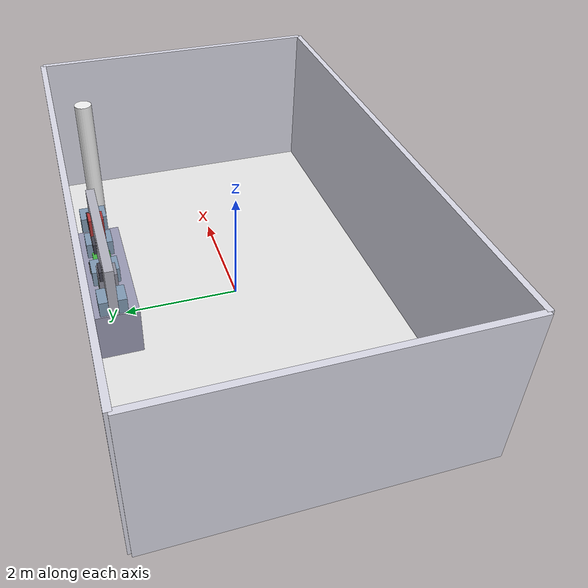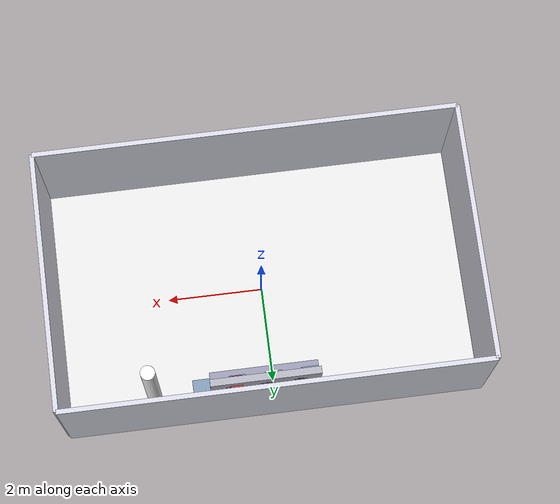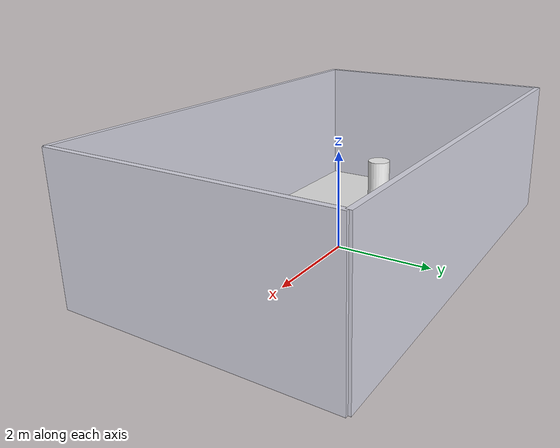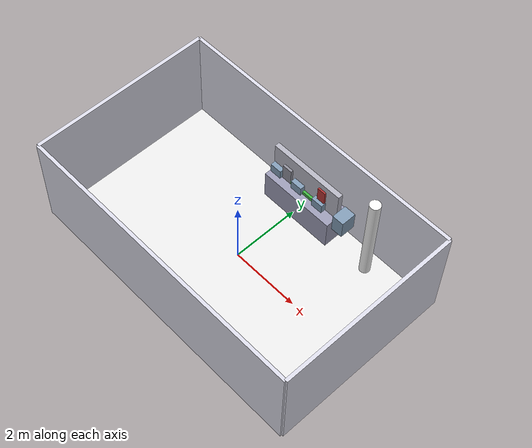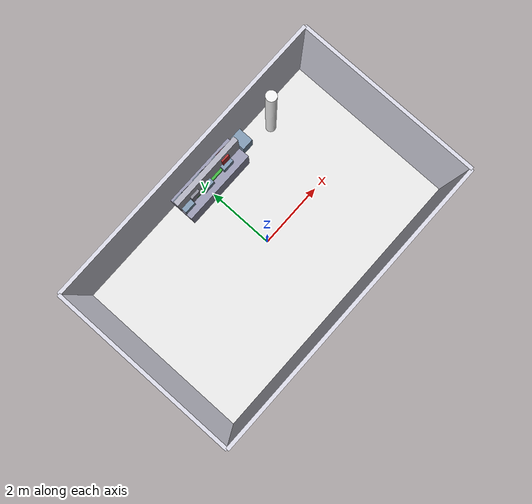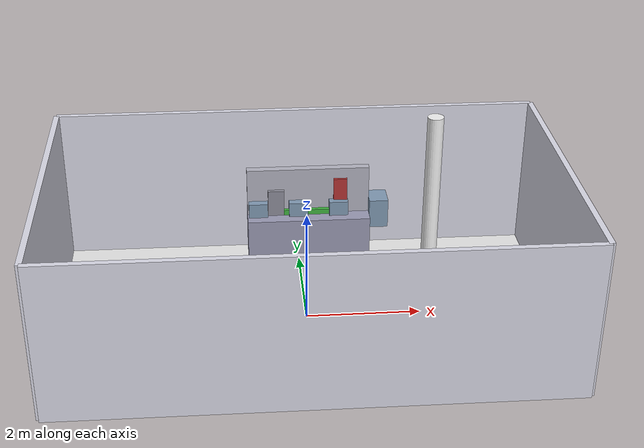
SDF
<?xml version="1.0" ?>
<sdf version="1.7">
  <world name="my_lab">
    <gravity>0 0 -9.81</gravity>

    <!-- Luz ambiente -->
    <light type="directional" name="sun">
      <pose>0 0 10 0.4 0.2 -0.8</pose>
      <diffuse>1 1 1 1</diffuse>
      <specular>0.3 0.3 0.3 1</specular>
      <direction>-0.3 0.2 -1</direction>
      <cast_shadows>false</cast_shadows>
    </light>

    <scene>
      <ambient>0.8 0.8 0.8 1</ambient>
      <background>0.92 0.92 0.96 1</background>
      <shadows>false</shadows>
    </scene>

    <!-- Piso (8.7 x 5.3 m) -->
    <model name="floor">
      <static>true</static>
      <link name="link">
        <collision name="col">
          <geometry>
            <plane>
              <normal>0 0 1</normal>
              <size>8.7 5.3</size>
            </plane>
          </geometry>
        </collision>
        <visual name="vis">
          <geometry>
            <plane>
              <normal>0 0 1</normal>
              <size>8.7 5.3</size>
            </plane>
          </geometry>
          <material>
            <ambient>0.9 0.9 0.9 1</ambient>
            <diffuse>0.9 0.9 0.9 1</diffuse>
          </material>
        </visual>
      </link>
    </model>

    <!-- Paredes (8.7 x 5.3 m, altura 2.8 m) -->
    <model name='wall_front'>
      <static>true</static>
      <pose>0 2.65 1.4 0 0 0</pose>
      <link name='link'>
        <visual name='vis'>
          <geometry><box><size>8.7 0.1 2.8</size></box></geometry>
          <material>
            <ambient>0.85 0.85 0.9 1</ambient>
            <diffuse>0.85 0.85 0.9 1</diffuse>
          </material>
        </visual>
        <collision name='col'>
          <geometry><box><size>8.7 0.1 2.8</size></box></geometry>
        </collision>
      </link>
    </model>

    <model name='wall_back'>
      <static>true</static>
      <pose>0 -2.65 1.4 0 0 0</pose>
      <link name='link'>
        <visual name='vis'>
          <geometry><box><size>8.7 0.1 2.8</size></box></geometry>
          <material>
            <ambient>0.85 0.85 0.9 1</ambient>
            <diffuse>0.85 0.85 0.9 1</diffuse>
          </material>
        </visual>
        <collision name='col'>
          <geometry><box><size>8.7 0.1 2.8</size></box></geometry>
        </collision>
      </link>
    </model>

    <model name='wall_left'>
      <static>true</static>
      <pose>-4.35 0 1.4 0 0 0</pose>
      <link name='link'>
        <visual name='vis'>
          <geometry><box><size>0.1 5.3 2.8</size></box></geometry>
          <material>
            <ambient>0.85 0.85 0.9 1</ambient>
            <diffuse>0.85 0.85 0.9 1</diffuse>
          </material>
        </visual>
        <collision name='col'>
          <geometry><box><size>0.1 5.3 2.8</size></box></geometry>
        </collision>
      </link>
    </model>

    <model name='wall_right'>
      <static>true</static>
      <pose>4.35 0 1.4 0 0 0</pose>
      <link name='link'>
        <visual name='vis'>
          <geometry><box><size>0.1 5.3 2.8</size></box></geometry>
          <material>
            <ambient>0.85 0.85 0.9 1</ambient>
            <diffuse>0.85 0.85 0.9 1</diffuse>
          </material>
        </visual>
        <collision name='col'>
          <geometry><box><size>0.1 5.3 2.8</size></box></geometry>
        </collision>
      </link>
    </model>

    <!-- Bancada principal (2.27 x 0.8 x 0.89 m) -->
    <model name='bench_real'>
      <static>true</static>
      <pose>0.185 2.25 0.445 0 0 0</pose>
      <link name='bench_link'>
        <visual name='bench_surface'>
          <geometry><box><size>2.27 0.8 0.89</size></box></geometry>
          <material>
            <ambient>0.6 0.6 0.7 1</ambient>
            <diffuse>0.6 0.6 0.7 1</diffuse>
          </material>
        </visual>
        <collision name='col'>
          <geometry><box><size>2.27 0.8 0.89</size></box></geometry>
        </collision>
      </link>
    </model>

    <!-- Estrutura metálica vertical (suporte para PLCs/HMIs) -->
    <model name='frame_structure'>
      <static>true</static>
      <pose>0.185 2.25 1.34 0 0 0</pose>
      <link name='frame_link'>
        <visual name='metal_frame'>
          <geometry><box><size>2.27 0.15 0.9</size></box></geometry>
          <material>
            <ambient>0.7 0.7 0.75 1</ambient>
            <diffuse>0.7 0.7 0.75 1</diffuse>
          </material>
        </visual>
        <collision name='col'>
          <geometry><box><size>2.27 0.15 0.9</size></box></geometry>
        </collision>
      </link>
    </model>

    <!-- Módulos Siemens/Festo - reposicionados sobre a bancada (espaçamento simétrico) -->
    <model name='module_1'>
      <static>true</static>
      <pose>-0.75 2.25 0.89 0 0 0</pose>
      <link name='module_1_link'>
        <visual name='vis'>
          <geometry><box><size>0.35 0.45 0.55</size></box></geometry>
          <material>
            <ambient>0.5 0.6 0.7 1</ambient>
            <diffuse>0.5 0.6 0.7 1</diffuse>
          </material>
        </visual>
        <collision name='col'>
          <geometry><box><size>0.35 0.45 0.55</size></box></geometry>
        </collision>
      </link>
    </model>

    <model name='module_2'>
      <static>true</static>
      <pose>0 2.25 0.89 0 0 0</pose>
      <link name='module_2_link'>
        <visual name='vis'>
          <geometry><box><size>0.35 0.45 0.55</size></box></geometry>
          <material>
            <ambient>0.5 0.6 0.7 1</ambient>
            <diffuse>0.5 0.6 0.7 1</diffuse>
          </material>
        </visual>
        <collision name='col'>
          <geometry><box><size>0.35 0.45 0.55</size></box></geometry>
        </collision>
      </link>
    </model>

    <model name='module_3'>
      <static>true</static>
      <pose>0.75 2.25 0.89 0 0 0</pose>
      <link name='module_3_link'>
        <visual name='vis'>
          <geometry><box><size>0.35 0.45 0.55</size></box></geometry>
          <material>
            <ambient>0.5 0.6 0.7 1</ambient>
            <diffuse>0.5 0.6 0.7 1</diffuse>
          </material>
        </visual>
        <collision name='col'>
          <geometry><box><size>0.35 0.45 0.55</size></box></geometry>
        </collision>
      </link>
    </model>

    <model name='module_4'>
      <static>true</static>
      <pose>1.5 2.25 0.89 0 0 0</pose>
      <link name='module_4_link'>
        <visual name='vis'>
          <geometry><box><size>0.35 0.45 0.55</size></box></geometry>
          <material>
            <ambient>0.5 0.6 0.7 1</ambient>
            <diffuse>0.5 0.6 0.7 1</diffuse>
          </material>
        </visual>
        <collision name='col'>
          <geometry><box><size>0.35 0.45 0.55</size></box></geometry>
        </collision>
      </link>
    </model>

    <!-- Componentes - reposicionados sobre a bancada -->
    <model name='conveyor'>
      <static>true</static>
      <pose>0.185 2.25 0.89 0 0 0</pose>
      <link name='conveyor_link'>
        <visual name='vis'>
          <geometry><box><size>1.2 0.3 0.2</size></box></geometry>
          <material>
            <ambient>0.25 0.7 0.25 1</ambient>
            <diffuse>0.25 0.7 0.25 1</diffuse>
          </material>
        </visual>
        <collision name='col'>
          <geometry><box><size>1.2 0.3 0.2</size></box></geometry>
        </collision>
      </link>
    </model>

    <model name='press'>
      <static>true</static>
      <pose>0.785 2.25 1.19 0 0 0</pose>
      <link name='press_link'>
        <visual name='vis'>
          <geometry><box><size>0.25 0.25 0.8</size></box></geometry>
          <material>
            <ambient>0.7 0.2 0.2 1</ambient>
            <diffuse>0.7 0.2 0.2 1</diffuse>
          </material>
        </visual>
        <collision name='col'>
          <geometry><box><size>0.25 0.25 0.8</size></box></geometry>
        </collision>
      </link>
    </model>

    <!-- Elevator -->
    <model name='elevator'>
      <static>true</static>
      <pose>-0.415 2.25 0.94 0 0 0</pose>
      <link name='elevator_link'>
        <visual name='vis'>
          <geometry><box><size>0.3 0.3 0.9</size></box></geometry>
          <material>
            <ambient>0.55 0.55 0.6 1</ambient>
            <diffuse>0.55 0.55 0.6 1</diffuse>
          </material>
        </visual>
        <collision name='col'>
          <geometry><box><size>0.3 0.3 0.9</size></box></geometry>
        </collision>
      </link>
    </model>

    <!-- Sensor preto (acima da esteira) -->
    <model name='sensor'>
      <static>true</static>
      <pose>0.185 2.45 0.99 0 0 0</pose>
      <link name='sensor_link'>
        <visual name='vis'>
          <geometry><box><size>0.08 0.08 0.2</size></box></geometry>
          <material>
            <ambient>0.1 0.1 0.1 1</ambient>
            <diffuse>0.1 0.1 0.1 1</diffuse>
          </material>
        </visual>
        <collision name='col'>
          <geometry><box><size>0.08 0.08 0.2</size></box></geometry>
        </collision>
      </link>
    </model>

    <!-- PLCs e HMIs na estrutura vertical (rack) -->
    <model name='plc_hmi_rack'>
      <static>true</static>
      <pose>0.185 2.3 1.45 0 0 0</pose>
      <link name='rack_link'>
        <!-- Conjunto 1: PLC + HMI -->
        <visual name='plc_1'>
          <pose>-0.7 0 0 0 0 0</pose>
          <geometry><box><size>0.12 0.05 0.18</size></box></geometry>
          <material>
            <ambient>0.4 0.4 0.45 1</ambient>
            <diffuse>0.4 0.4 0.45 1</diffuse>
          </material>
        </visual>
        <collision name='plc_1_col'>
          <pose>-0.7 0 0 0 0 0</pose>
          <geometry><box><size>0.12 0.05 0.18</size></box></geometry>
        </collision>
        <visual name='hmi_1'>
          <pose>-0.7 0.06 0 0 0 0</pose>
          <geometry><box><size>0.25 0.05 0.18</size></box></geometry>
          <material>
            <ambient>0.25 0.25 0.3 1</ambient>
            <diffuse>0.25 0.25 0.3 1</diffuse>
          </material>
        </visual>
        <collision name='hmi_1_col'>
          <pose>-0.7 0.06 0 0 0 0</pose>
          <geometry><box><size>0.25 0.05 0.18</size></box></geometry>
        </collision>

        <!-- Conjunto 2: PLC + HMI -->
        <visual name='plc_2'>
          <pose>0 0 0 0 0 0</pose>
          <geometry><box><size>0.12 0.05 0.18</size></box></geometry>
          <material>
            <ambient>0.4 0.4 0.45 1</ambient>
            <diffuse>0.4 0.4 0.45 1</diffuse>
          </material>
        </visual>
        <collision name='plc_2_col'>
          <pose>0 0 0 0 0 0</pose>
          <geometry><box><size>0.12 0.05 0.18</size></box></geometry>
        </collision>
        <visual name='hmi_2'>
          <pose>0 0.06 0 0 0 0</pose>
          <geometry><box><size>0.25 0.05 0.18</size></box></geometry>
          <material>
            <ambient>0.25 0.25 0.3 1</ambient>
            <diffuse>0.25 0.25 0.3 1</diffuse>
          </material>
        </visual>
        <collision name='hmi_2_col'>
          <pose>0 0.06 0 0 0 0</pose>
          <geometry><box><size>0.25 0.05 0.18</size></box></geometry>
        </collision>

        <!-- Conjunto 3: PLC + HMI -->
        <visual name='plc_3'>
          <pose>0.7 0 0 0 0 0</pose>
          <geometry><box><size>0.12 0.05 0.18</size></box></geometry>
          <material>
            <ambient>0.4 0.4 0.45 1</ambient>
            <diffuse>0.4 0.4 0.45 1</diffuse>
          </material>
        </visual>
        <collision name='plc_3_col'>
          <pose>0.7 0 0 0 0 0</pose>
          <geometry><box><size>0.12 0.05 0.18</size></box></geometry>
        </collision>
        <visual name='hmi_3'>
          <pose>0.7 0.06 0 0 0 0</pose>
          <geometry><box><size>0.25 0.05 0.18</size></box></geometry>
          <material>
            <ambient>0.25 0.25 0.3 1</ambient>
            <diffuse>0.25 0.25 0.3 1</diffuse>
          </material>
        </visual>
        <collision name='hmi_3_col'>
          <pose>0.7 0.06 0 0 0 0</pose>
          <geometry><box><size>0.25 0.05 0.18</size></box></geometry>
        </collision>
      </link>
    </model>

    <!-- Pilar cilíndrico branco -->
    <model name='pillar'>
      <static>true</static>
      <pose>2.5 2.1 1.4 0 0 0</pose>
      <link name='pillar_link'>
        <visual name='vis'>
          <geometry><cylinder><radius>0.15</radius><length>2.8</length></cylinder></geometry>
          <material>
            <ambient>0.95 0.95 0.95 1</ambient>
            <diffuse>0.95 0.95 0.95 1</diffuse>
          </material>
        </visual>
        <collision name='col'>
          <geometry><cylinder><radius>0.15</radius><length>2.8</length></cylinder></geometry>
        </collision>
      </link>
    </model>

  </world>
</sdf>
